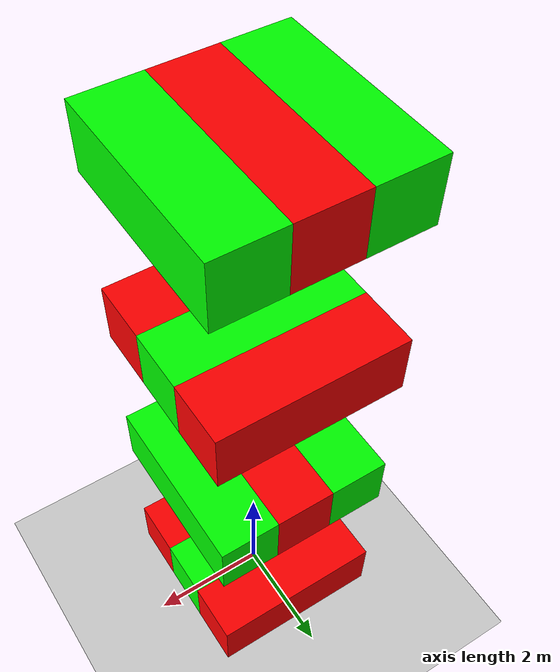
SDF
<?xml version="1.0" ?>
<!--
  Demo of Jenga game
-->
<sdf version="1.6">
  <world name="jenga">
    <physics name="1ms" type="bullet">
      <max_step_size>0.001</max_step_size>
      <real_time_factor>1.0</real_time_factor>
    </physics>
    <plugin
      filename="libignition-gazebo-physics-system.so"
      name="ignition::gazebo::systems::Physics">
    </plugin>
    <plugin
      filename="libignition-gazebo-user-commands-system.so"
      name="ignition::gazebo::systems::UserCommands">
    </plugin>
    <plugin
      filename="libignition-gazebo-scene-broadcaster-system.so"
      name="ignition::gazebo::systems::SceneBroadcaster">
    </plugin>

    <scene>
      <ambient>1.0 1.0 1.0</ambient>
      <background>0.8 0.8 0.8</background>
    </scene>

    <gui fullscreen="0">

      <!-- 3D scene -->
      <plugin filename="GzScene3D" name="3D View">
        <ignition-gui>
          <title>3D View</title>
          <property type="bool" key="showTitleBar">false</property>
          <property type="string" key="state">docked</property>
        </ignition-gui>

        <engine>ogre2</engine>
        <scene>scene</scene>
        <ambient_light>1.0 1.0 1.0</ambient_light>
        <background_color>0.8 0.8 0.8</background_color>
        <camera_pose>-6 0 6 0 0.5 0</camera_pose>
      </plugin>

      <!-- World control -->
      <plugin filename="WorldControl" name="World control">
        <ignition-gui>
          <title>World control</title>
          <property type="bool" key="showTitleBar">false</property>
          <property type="bool" key="resizable">false</property>
          <property type="double" key="height">72</property>
          <property type="double" key="width">121</property>
          <property type="double" key="z">1</property>

          <property type="string" key="state">floating</property>
          <anchors target="3D View">
            <line own="left" target="left"/>
            <line own="bottom" target="bottom"/>
          </anchors>
        </ignition-gui>

        <play_pause>true</play_pause>
        <step>true</step>
        <start_paused>true</start_paused>
        <service>/world/jenga/control</service>
        <stats_topic>/world/jenga/stats</stats_topic>

      </plugin>

      <!-- World statistics -->
      <plugin filename="WorldStats" name="World stats">
        <ignition-gui>
          <title>World stats</title>
          <property type="bool" key="showTitleBar">false</property>
          <property type="bool" key="resizable">false</property>
          <property type="double" key="height">110</property>
          <property type="double" key="width">290</property>
          <property type="double" key="z">1</property>

          <property type="string" key="state">floating</property>
          <anchors target="3D View">
            <line own="right" target="right"/>
            <line own="bottom" target="bottom"/>
          </anchors>
        </ignition-gui>

        <sim_time>true</sim_time>
        <real_time>true</real_time>
        <real_time_factor>true</real_time_factor>
        <iterations>true</iterations>
        <topic>/world/jenga/stats</topic>

      </plugin>

      <!-- Entity tree -->
      <plugin filename="EntityTree" name="Entity tree">
        <ignition-gui>
          <property type="bool" key="showTitleBar">false</property>
          <property type="string" key="state">docked</property>
        </ignition-gui>
      </plugin>

      <!-- Transform Control -->
      <plugin filename="TransformControl" name="Transform Control">
      </plugin>

    </gui>

    <light type="directional" name="sun">
      <cast_shadows>true</cast_shadows>
      <pose>0 0 10 0 0 0</pose>
      <diffuse>0.8 0.8 0.8 1</diffuse>
      <specular>0.8 0.8 0.8 1</specular>
      <attenuation>
        <range>1000</range>
        <constant>0.9</constant>
        <linear>0.01</linear>
        <quadratic>0.001</quadratic>
      </attenuation>
      <direction>-0.5 0.1 -0.9</direction>
    </light>

    <model name="ground_plane">
      <static>true</static>
      <link name="link">
        <collision name="collision">
          <geometry>
            <plane>
              <normal>0 0 1</normal>
            </plane>
          </geometry>
        </collision>
        <visual name="visual">
          <geometry>
            <plane>
              <normal>0 0 1</normal>
              <size>100 100</size>
            </plane>
          </geometry>
          <material>
            <ambient>0.8 0.8 0.8 1</ambient>
            <diffuse>0.8 0.8 0.8 1</diffuse>
            <specular>0.8 0.8 0.8 1</specular>
          </material>
        </visual>
      </link>
    </model>

    <model name="box">
      <pose>0 0 0.5 0 0 0</pose>
      <link name="box_link">
        <inertial>
          <inertia>
            <ixx>1</ixx>
            <ixy>0</ixy>
            <ixz>0</ixz>
            <iyy>1</iyy>
            <iyz>0</iyz>
            <izz>1</izz>
          </inertia>
          <mass>1.0</mass>
        </inertial>
        <collision name="box_collision">
          <geometry>
            <box>
              <size>3 1 1</size>
            </box>
          </geometry>
        </collision>

        <visual name="box_visual">
          <geometry>
            <box>
              <size>3 1 1</size>
            </box>
          </geometry>
          <material>
            <ambient>0 1 0 1</ambient>
            <diffuse>0 1 0 1</diffuse>
            <specular>0 1 0 1</specular>
          </material>
        </visual>
      </link>
    </model>

    <model name="box2">
      <pose>0 1 0.5 0 0 0</pose>
      <link name="box_link">
        <inertial>
          <inertia>
            <ixx>1</ixx>
            <ixy>0</ixy>
            <ixz>0</ixz>
            <iyy>1</iyy>
            <iyz>0</iyz>
            <izz>1</izz>
          </inertia>
          <mass>1.0</mass>
        </inertial>
        <collision name="box_collision">
          <geometry>
            <box>
              <size>3 1 1</size>
            </box>
          </geometry>
        </collision>

        <visual name="box_visual">
          <geometry>
            <box>
              <size>3 1 1</size>
            </box>
          </geometry>
          <material>
            <ambient>1 0 0 1</ambient>
            <diffuse>1 0 0 1</diffuse>
            <specular>1 0 0 1</specular>
          </material>
        </visual>
      </link>
    </model>

    <model name="box3">
      <pose>0 -1 0.5 0 0 0</pose>
      <link name="box_link">
        <inertial>
          <inertia>
            <ixx>1</ixx>
            <ixy>0</ixy>
            <ixz>0</ixz>
            <iyy>1</iyy>
            <iyz>0</iyz>
            <izz>1</izz>
          </inertia>
          <mass>1.0</mass>
        </inertial>
        <collision name="box_collision">
          <geometry>
            <box>
              <size>3 1 1</size>
            </box>
          </geometry>
        </collision>

        <visual name="box_visual">
          <geometry>
            <box>
              <size>3 1 1</size>
            </box>
          </geometry>
          <material>
            <ambient>1 0 0 1</ambient>
            <diffuse>1 0 0 1</diffuse>
            <specular>1 0 0 1</specular>
          </material>
        </visual>
      </link>
    </model>

    <model name="box4">
      <pose>0 0 3.5 0 0 0</pose>
      <link name="box_link">
        <inertial>
          <inertia>
            <ixx>1</ixx>
            <ixy>0</ixy>
            <ixz>0</ixz>
            <iyy>1</iyy>
            <iyz>0</iyz>
            <izz>1</izz>
          </inertia>
          <mass>1.0</mass>
        </inertial>
        <collision name="box_collision">
          <geometry>
            <box>
              <size>1 3 1</size>
            </box>
          </geometry>
        </collision>

        <visual name="box_visual">
          <geometry>
            <box>
              <size>1 3 1</size>
            </box>
          </geometry>
          <material>
            <ambient>1 0 0 1</ambient>
            <diffuse>1 0 0 1</diffuse>
            <specular>1 0 0 1</specular>
          </material>
        </visual>
      </link>
    </model>

    <model name="box5">
      <pose>1 0 3.5 0 0 0</pose>
      <link name="box_link">
        <inertial>
          <inertia>
            <ixx>1</ixx>
            <ixy>0</ixy>
            <ixz>0</ixz>
            <iyy>1</iyy>
            <iyz>0</iyz>
            <izz>1</izz>
          </inertia>
          <mass>1.0</mass>
        </inertial>
        <collision name="box_collision">
          <geometry>
            <box>
              <size>1 3 1</size>
            </box>
          </geometry>
        </collision>

        <visual name="box_visual">
          <geometry>
            <box>
              <size>1 3 1</size>
            </box>
          </geometry>
          <material>
            <ambient>0 1 0 1</ambient>
            <diffuse>0 1 0 1</diffuse>
            <specular>0 1 0 1</specular>
          </material>
        </visual>
      </link>
    </model>

    <model name="box6">
      <pose>-1 0 3.5 0 0 0</pose>
      <link name="box_link">
        <inertial>
          <inertia>
            <ixx>1</ixx>
            <ixy>0</ixy>
            <ixz>0</ixz>
            <iyy>1</iyy>
            <iyz>0</iyz>
            <izz>1</izz>
          </inertia>
          <mass>1.0</mass>
        </inertial>
        <collision name="box_collision">
          <geometry>
            <box>
              <size>1 3 1</size>
            </box>
          </geometry>
        </collision>

        <visual name="box_visual">
          <geometry>
            <box>
              <size>1 3 1</size>
            </box>
          </geometry>
          <material>
            <ambient>0 1 0 1</ambient>
            <diffuse>0 1 0 1</diffuse>
            <specular>0 1 0 1</specular>
          </material>
        </visual>
      </link>
    </model>

    <model name="box7">
      <pose>0 0 6.5 0 0 0</pose>
      <link name="box_link">
        <inertial>
          <inertia>
            <ixx>1</ixx>
            <ixy>0</ixy>
            <ixz>0</ixz>
            <iyy>1</iyy>
            <iyz>0</iyz>
            <izz>1</izz>
          </inertia>
          <mass>1.0</mass>
        </inertial>
        <collision name="box_collision">
          <geometry>
            <box>
              <size>3 1 1</size>
            </box>
          </geometry>
        </collision>

        <visual name="box_visual">
          <geometry>
            <box>
              <size>3 1 1</size>
            </box>
          </geometry>
          <material>
            <ambient>0 1 0 1</ambient>
            <diffuse>0 1 0 1</diffuse>
            <specular>0 1 0 1</specular>
          </material>
        </visual>
      </link>
    </model>

    <model name="box8">
      <pose>0 1 6.5 0 0 0</pose>
      <link name="box_link">
        <inertial>
          <inertia>
            <ixx>1</ixx>
            <ixy>0</ixy>
            <ixz>0</ixz>
            <iyy>1</iyy>
            <iyz>0</iyz>
            <izz>1</izz>
          </inertia>
          <mass>1.0</mass>
        </inertial>
        <collision name="box_collision">
          <geometry>
            <box>
              <size>3 1 1</size>
            </box>
          </geometry>
        </collision>

        <visual name="box_visual">
          <geometry>
            <box>
              <size>3 1 1</size>
            </box>
          </geometry>
          <material>
            <ambient>1 0 0 1</ambient>
            <diffuse>1 0 0 1</diffuse>
            <specular>1 0 0 1</specular>
          </material>
        </visual>
      </link>
    </model>

    <model name="box9">
      <pose>0 -1 6.5 0 0 0</pose>
      <link name="box_link">
        <inertial>
          <inertia>
            <ixx>1</ixx>
            <ixy>0</ixy>
            <ixz>0</ixz>
            <iyy>1</iyy>
            <iyz>0</iyz>
            <izz>1</izz>
          </inertia>
          <mass>1.0</mass>
        </inertial>
        <collision name="box_collision">
          <geometry>
            <box>
              <size>3 1 1</size>
            </box>
          </geometry>
        </collision>

        <visual name="box_visual">
          <geometry>
            <box>
              <size>3 1 1</size>
            </box>
          </geometry>
          <material>
            <ambient>1 0 0 1</ambient>
            <diffuse>1 0 0 1</diffuse>
            <specular>1 0 0 1</specular>
          </material>
        </visual>
      </link>
    </model>

    <model name="box10">
      <pose>0 0 9.5 0 0 0</pose>
      <link name="box_link">
        <inertial>
          <inertia>
            <ixx>1</ixx>
            <ixy>0</ixy>
            <ixz>0</ixz>
            <iyy>1</iyy>
            <iyz>0</iyz>
            <izz>1</izz>
          </inertia>
          <mass>1.0</mass>
        </inertial>
        <collision name="box_collision">
          <geometry>
            <box>
              <size>1 3 1</size>
            </box>
          </geometry>
        </collision>

        <visual name="box_visual">
          <geometry>
            <box>
              <size>1 3 1</size>
            </box>
          </geometry>
          <material>
            <ambient>1 0 0 1</ambient>
            <diffuse>1 0 0 1</diffuse>
            <specular>1 0 0 1</specular>
          </material>
        </visual>
      </link>
    </model>

    <model name="box11">
      <pose>1 0 9.5 0 0 0</pose>
      <link name="box_link">
        <inertial>
          <inertia>
            <ixx>1</ixx>
            <ixy>0</ixy>
            <ixz>0</ixz>
            <iyy>1</iyy>
            <iyz>0</iyz>
            <izz>1</izz>
          </inertia>
          <mass>1.0</mass>
        </inertial>
        <collision name="box_collision">
          <geometry>
            <box>
              <size>1 3 1</size>
            </box>
          </geometry>
        </collision>

        <visual name="box_visual">
          <geometry>
            <box>
              <size>1 3 1</size>
            </box>
          </geometry>
          <material>
            <ambient>0 1 0 1</ambient>
            <diffuse>0 1 0 1</diffuse>
            <specular>0 1 0 1</specular>
          </material>
        </visual>
      </link>
    </model>

    <model name="box12">
      <pose>-1 0 9.5 0 0 0</pose>
      <link name="box_link">
        <inertial>
          <inertia>
            <ixx>1</ixx>
            <ixy>0</ixy>
            <ixz>0</ixz>
            <iyy>1</iyy>
            <iyz>0</iyz>
            <izz>1</izz>
          </inertia>
          <mass>1.0</mass>
        </inertial>
        <collision name="box_collision">
          <geometry>
            <box>
              <size>1 3 1</size>
            </box>
          </geometry>
        </collision>

        <visual name="box_visual">
          <geometry>
            <box>
              <size>1 3 1</size>
            </box>
          </geometry>
          <material>
            <ambient>0 1 0 1</ambient>
            <diffuse>0 1 0 1</diffuse>
            <specular>0 1 0 1</specular>
          </material>
        </visual>
      </link>
    </model>

  </world>
</sdf>
